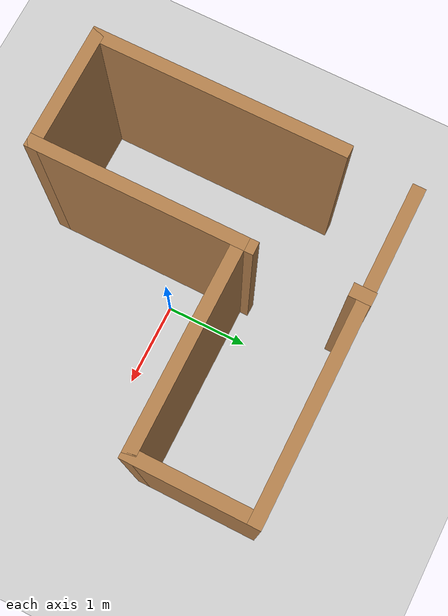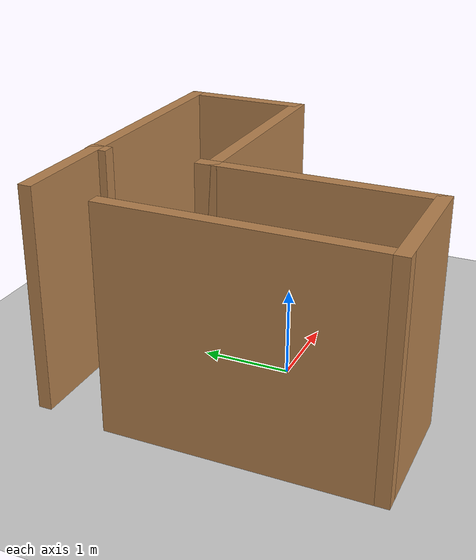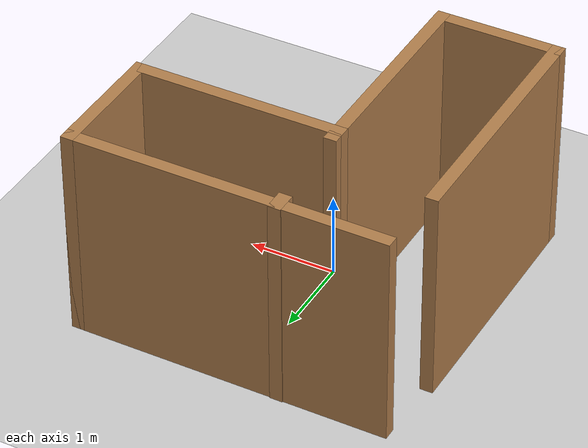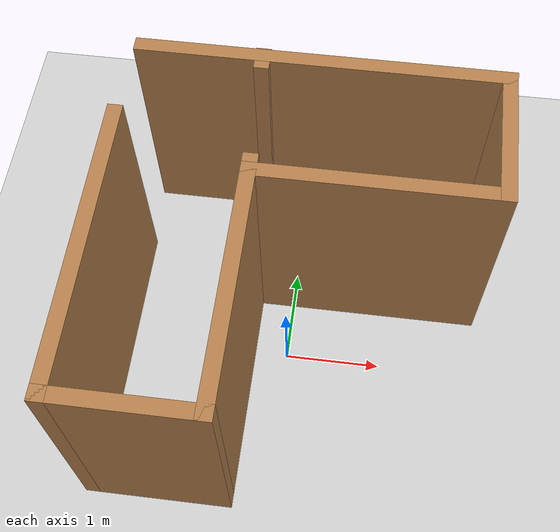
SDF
<sdf version="1.6">
 <world name="default">
  <light name="sun" type="directional">
   <pose>0 0 10 0 -0 0</pose>
   <diffuse>0.8 0.8 0.8 1</diffuse>
   <specular>0.2 0.2 0.2 1</specular>
   <attenuation>
    <range>1000</range>
    <constant>0.9</constant>
    <linear>0.01</linear>
    <quadratic>0.001</quadratic>
   </attenuation>
   <direction>-0.5 0.1 -0.9</direction>
  </light>
  <model name="ground_plane">
   <static>1</static>
   <link name="link">
    <collision name="collision">
     <geometry><plane><normal>0 0 1</normal><size>100 100</size></plane></geometry>
     <surface>
      <contact><collide_bitmask>65535</collide_bitmask></contact>
      <friction><ode><mu>100</mu><mu2>50</mu2></ode></friction>
     </surface>
    </collision>
    <visual name="visual">
     <cast_shadows>0</cast_shadows>
     <geometry><plane><normal>0 0 1</normal><size>100 100</size></plane></geometry>
     <material>
      <script><uri>file://media/materials/scripts/gazebo.material</uri><name>Gazebo/Grey</name></script>
     </material>
    </visual>
   </link>
  </model>
  <gravity>0 0 -9.8</gravity>
  <magnetic_field>6e-06 2.3e-05 -4.2e-05</magnetic_field>
  <atmosphere type="adiabatic"/>
  <physics name="default_physics" default="0" type="ode">
   <max_step_size>0.001</max_step_size>
   <real_time_factor>1</real_time_factor>
   <real_time_update_rate>1000</real_time_update_rate>
  </physics>
  <scene><ambient>0.4 0.4 0.4 1</ambient><background>0.7 0.7 0.7 1</background><shadows>1</shadows></scene>
  <audio><device>default</device></audio>
  <spherical_coordinates>
   <surface_model>EARTH_WGS84</surface_model>
   <latitude_deg>0</latitude_deg>
   <longitude_deg>0</longitude_deg>
   <elevation>0</elevation>
   <heading_deg>0</heading_deg>
  </spherical_coordinates>
  <model name="aiitra_world_2">
   <pose>0.08 0.205 0 0 -0 0</pose>
   <link name="Wall_0">
    <collision name="Wall_0_Collision">
     <geometry><box><size>3.75 0.15 2.5</size></box></geometry>
     <pose>0 0 1.25 0 -0 0</pose>
    </collision>
    <visual name="Wall_0_Visual">
     <pose>0 0 1.25 0 -0 0</pose>
     <geometry><box><size>3.75 0.15 2.5</size></box></geometry>
     <material>
      <script><uri>file://media/materials/scripts/gazebo.material</uri><name>Gazebo/Wood</name></script>
      <ambient>0.435294 0.796078 0.67451 1</ambient>
     </material>
     <meta><layer>0</layer></meta>
    </visual>
    <pose>0.05 1.845 0 0 -0 0</pose>
   </link>
   <link name="Wall_1">
    <collision name="Wall_1_Collision">
     <geometry><box><size>1.5 0.15 2.5</size></box></geometry>
     <pose>0 0 1.25 0 -0 0</pose>
    </collision>
    <visual name="Wall_1_Visual">
     <pose>0 0 1.25 0 -0 0</pose>
     <geometry><box><size>1.5 0.15 2.5</size></box></geometry>
     <material>
      <script><uri>file://media/materials/scripts/gazebo.material</uri><name>Gazebo/Wood</name></script>
      <ambient>0.435294 0.796078 0.67451 1</ambient>
     </material>
     <meta><layer>0</layer></meta>
    </visual>
    <pose>1.85 1.17 0 0 -0 -1.5708</pose>
   </link>
   <link name="Wall_11">
    <collision name="Wall_11_Collision">
     <geometry><box><size>0.25 0.15 2.5</size></box></geometry>
     <pose>0 0 1.25 0 -0 0</pose>
    </collision>
    <visual name="Wall_11_Visual">
     <pose>0 0 1.25 0 -0 0</pose>
     <geometry><box><size>0.25 0.15 2.5</size></box></geometry>
     <material>
      <script><uri>file://media/materials/scripts/gazebo.material</uri><name>Gazebo/Wood</name></script>
      <ambient>0.435294 0.796078 0.67451 1</ambient>
     </material>
     <meta><layer>0</layer></meta>
    </visual>
    <pose>-0.55 1.805 0 0 -0 -1.5708</pose>
   </link>
   <link name="Wall_2">
    <collision name="Wall_2_Collision">
     <geometry><box><size>2.5 0.15 2.5</size></box></geometry>
     <pose>0 0 1.25 0 -0 0</pose>
    </collision>
    <visual name="Wall_2_Visual">
     <pose>0 0 1.25 0 -0 0</pose>
     <geometry><box><size>2.5 0.15 2.5</size></box></geometry>
     <material>
      <script><uri>file://media/materials/scripts/gazebo.material</uri><name>Gazebo/Wood</name></script>
      <ambient>0.435294 0.796078 0.67451 1</ambient>
     </material>
     <meta><layer>0</layer></meta>
    </visual>
    <pose>0.675 0.495 0 0 -0 3.14159</pose>
   </link>
   <link name="Wall_3">
    <collision name="Wall_3_Collision">
     <geometry><box><size>2.5 0.15 2.5</size></box></geometry>
     <pose>0 0 1.25 0 -0 0</pose>
    </collision>
    <visual name="Wall_3_Visual">
     <pose>0 0 1.25 0 -0 0</pose>
     <geometry><box><size>2.5 0.15 2.5</size></box></geometry>
     <material>
      <script><uri>file://media/materials/scripts/gazebo.material</uri><name>Gazebo/Wood</name></script>
      <ambient>0.435294 0.796078 0.67451 1</ambient>
     </material>
     <meta><layer>0</layer></meta>
    </visual>
    <pose>-0.5 -0.68 0 0 -0 -1.5708</pose>
   </link>
   <link name="Wall_4">
    <collision name="Wall_4_Collision">
     <geometry><box><size>1.5 0.15 2.5</size></box></geometry>
     <pose>0 0 1.25 0 -0 0</pose>
    </collision>
    <visual name="Wall_4_Visual">
     <pose>0 0 1.25 0 -0 0</pose>
     <geometry><box><size>1.5 0.15 2.5</size></box></geometry>
     <material>
      <script><uri>file://media/materials/scripts/gazebo.material</uri><name>Gazebo/Wood</name></script>
      <ambient>0.435294 0.796078 0.67451 1</ambient>
     </material>
     <meta><layer>0</layer></meta>
    </visual>
    <pose>-1.175 -1.855 0 0 -0 3.14159</pose>
   </link>
   <link name="Wall_5">
    <collision name="Wall_5_Collision">
     <geometry><box><size>3 0.15 2.5</size></box></geometry>
     <pose>0 0 1.25 0 -0 0</pose>
    </collision>
    <visual name="Wall_5_Visual">
     <pose>0 0 1.25 0 -0 0</pose>
     <geometry><box><size>3 0.15 2.5</size></box></geometry>
     <material>
      <script><uri>file://media/materials/scripts/gazebo.material</uri><name>Gazebo/Wood</name></script>
      <ambient>0.435294 0.796078 0.67451 1</ambient>
     </material>
     <meta><layer>0</layer></meta>
    </visual>
    <pose>-1.85 -0.43 0 0 -0 1.5708</pose>
   </link>
   <link name="Wall_9">
    <collision name="Wall_9_Collision">
     <geometry><box><size>0.25 0.15 2.5</size></box></geometry>
     <pose>0 0 1.25 0 -0 0</pose>
    </collision>
    <visual name="Wall_9_Visual">
     <pose>0 0 1.25 0 -0 0</pose>
     <geometry><box><size>0.25 0.15 2.5</size></box></geometry>
     <material>
      <script><uri>file://media/materials/scripts/gazebo.material</uri><name>Gazebo/Wood</name></script>
      <ambient>0.435294 0.796078 0.67451 1</ambient>
     </material>
     <meta><layer>0</layer></meta>
    </visual>
    <pose>-0.5 0.545 0 0 -0 1.5708</pose>
   </link>
   <static>1</static>
  </model>
 </world>
</sdf>
